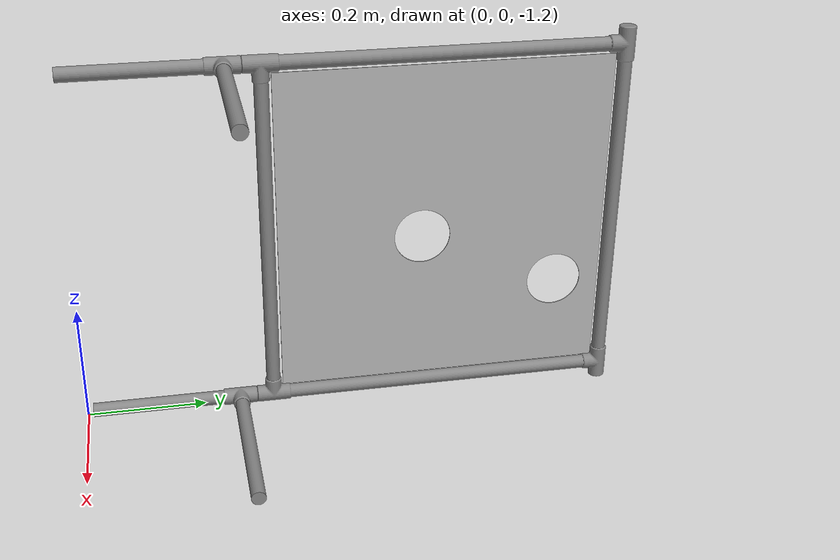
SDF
<?xml version="1.0"?>
<sdf version="1.6">
	<model name="robosub_torpedo">
		<static>true</static>
    	<pose>0 0 0 0 0 0</pose>
		<link name="robosub_torpedo">
			<pose>0 0 0 0 0 0</pose>
			<collision name="robosub_torpedo_col">
				<pose>0 0 0 0 0 0</pose>
				<geometry>
					<mesh>
						<uri>model://robosub_torpedo/meshes/torpedo.dae</uri>
					</mesh>
				</geometry>
			</collision>
			<visual name="robosub_torpedo_vis">
				<pose>0 0 0 0 0 0</pose>
				<geometry>
					<mesh>
						<uri>model://robosub_torpedo/meshes/torpedo.dae</uri>
					</mesh>
				</geometry>
			</visual>

		</link>
	</model>
</sdf>
